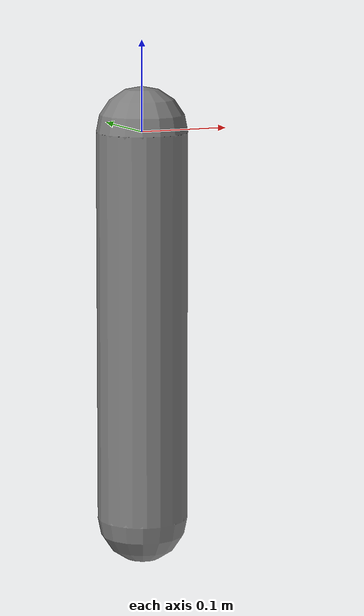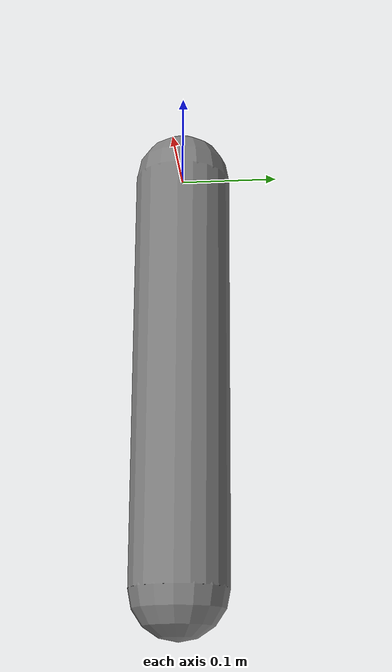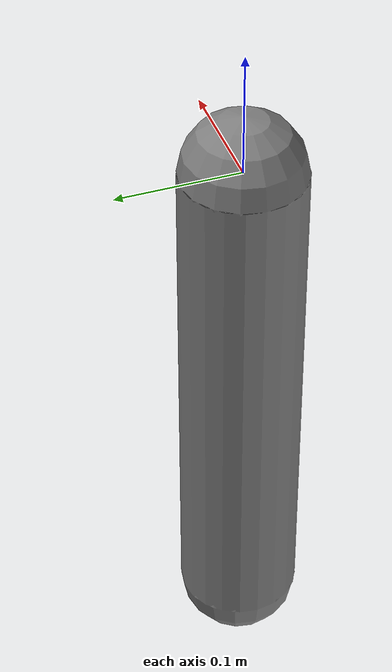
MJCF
<mujoco model="freyja_thigh_check_right">
    <compiler angle="degree"/>
    <worldbody>
        <body name="thigh_r">
            <freejoint/>
            <inertial pos="-0.017712 -0.014256 -0.185328" mass="7.995" fullinertia="0.12548 0.13429 0.03357 -0.00060 0.00731 0.00731"/>
            <geom type="capsule" fromto="0 0 0 0 0 -0.432" size="0.05" mass="0"/>
        </body>
    </worldbody>
</mujoco>
